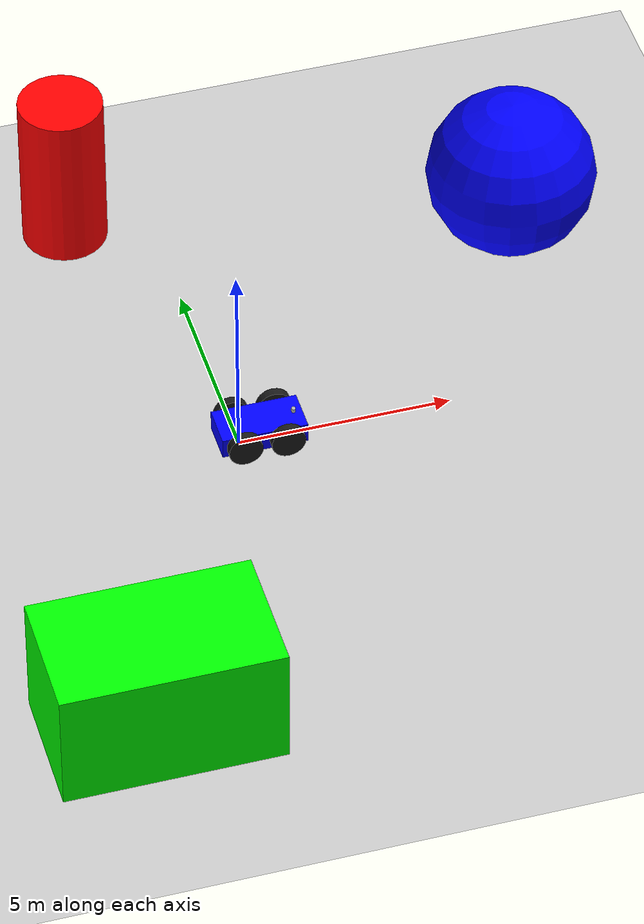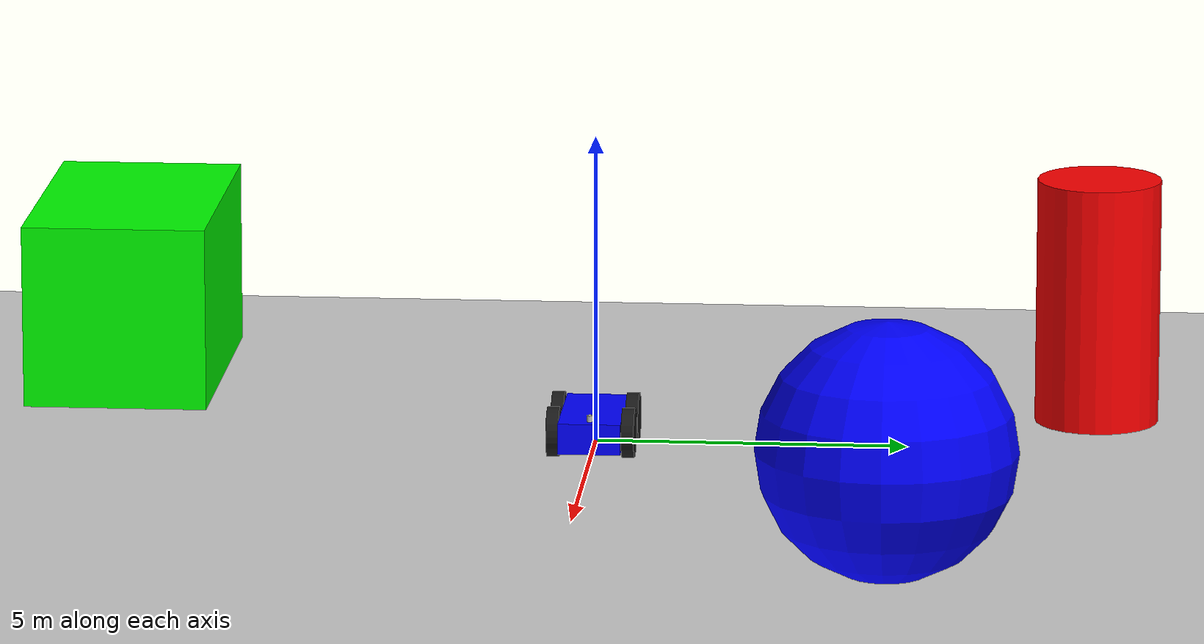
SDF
<?xml version="1.0" ?>
<sdf version="1.10">
    <world name="car_world">
        <physics name="1ms" type="ignored">
            <max_step_size>0.001</max_step_size>
            <real_time_factor>1.0</real_time_factor>
        </physics>
        <plugin
            filename="gz-sim-physics-system"
            name="gz::sim::systems::Physics">
        </plugin>
        <plugin
            filename="gz-sim-user-commands-system"
            name="gz::sim::systems::UserCommands">
        </plugin>
        <plugin
            filename="gz-sim-scene-broadcaster-system"
            name="gz::sim::systems::SceneBroadcaster">
        </plugin>
        <plugin filename="gz-sim-sensors-system"
            name="gz::sim::systems::Sensors">
            <render_engine>ogre2</render_engine>
        </plugin>

        <light type="directional" name="sun">
            <cast_shadows>true</cast_shadows>
            <pose>0 0 10 0 0 0</pose>
            <diffuse>0.8 0.8 0.8 1</diffuse>
            <specular>0.2 0.2 0.2 1</specular>
            <attenuation>
                <range>1000</range>
                <constant>0.9</constant>
                <linear>0.01</linear>
                <quadratic>0.001</quadratic>
            </attenuation>
            <direction>-0.5 0.1 -0.9</direction>
        </light>

        <model name="ground_plane">
            <static>true</static>
            <link name="link">
                <collision name="collision">
                <geometry>
                    <plane>
                    <normal>0 0 1</normal>
                    </plane>
                </geometry>
                </collision>
                <visual name="visual">
                <geometry>
                    <plane>
                    <normal>0 0 1</normal>
                    <size>1000 1000</size>
                    </plane>
                </geometry>
                <material>
                    <ambient>0.8 0.8 0.8 1</ambient>
                    <diffuse>0.8 0.8 0.8 1</diffuse>
                    <specular>0.8 0.8 0.8 1</specular>
                </material>
                </visual>
            </link>
        </model>

        <model name='vehicle_blue' canonical_link='chassis'>
            <plugin filename="gz-sim-diff-drive-system"
                name="gz::sim::systems::DiffDrive">
                <left_joint>left_front_wheel_joint</left_joint>
                <left_joint>left_rear_wheel_joint</left_joint>
                <right_joint>right_front_wheel_joint</right_joint>
                <right_joint>right_rear_wheel_joint</right_joint>
                <wheel_separation>1.2</wheel_separation>
                <wheel_radius>0.4</wheel_radius>
                <odom_publish_frequency>1</odom_publish_frequency>
                <topic>cmd_vel</topic>
            </plugin>

            <plugin filename="gz-sim-triggered-publisher-system"
                    name="gz::sim::systems::TriggeredPublisher">
                <input type="gz.msgs.Int32" topic="/keyboard/keypress">
                    <match field="data">16777235</match>
                </input>
                <output type="gz.msgs.Twist" topic="/cmd_vel">
                    linear: {x: 1}, angular: {z: 0.0}
                </output>
            </plugin>

            <plugin filename="gz-sim-triggered-publisher-system"
                    name="gz::sim::systems::TriggeredPublisher">
                <input type="gz.msgs.Int32" topic="/keyboard/keypress">
                    <match field="data">16777237</match>
                </input>
                <output type="gz.msgs.Twist" topic="/cmd_vel">
                    linear: {x: -1}, angular: {z: 0.0}
                </output>
            </plugin>

            <plugin filename="gz-sim-triggered-publisher-system"
                    name="gz::sim::systems::TriggeredPublisher">
                 <input type="gz.msgs.Int32" topic="/keyboard/keypress">
                    <match field="data">16777234</match>
                </input>
                <output type="gz.msgs.Twist" topic="/cmd_vel">
                    linear: {x: 0.0}, angular: {z: 1}
                </output>
            </plugin>

            <plugin filename="gz-sim-triggered-publisher-system"
                    name="gz::sim::systems::TriggeredPublisher">
                <input type="gz.msgs.Int32" topic="/keyboard/keypress">
                    <match field="data">16777236</match>
                </input>
                <output type="gz.msgs.Twist" topic="/cmd_vel">
                    linear: {x: 0.0}, angular: {z: -1}
                </output>
            </plugin>
            <pose relative_to='world'>0 0 0 0 0 0</pose>
            <link name='chassis'>
                <pose relative_to='__model__'>0.5 0 0.4 0 0 0</pose>
                <inertial>
                    <mass>1.14395</mass>
                    <inertia>
                        <ixx>0.095329</ixx>
                        <ixy>0</ixy>
                        <ixz>0</ixz>
                        <iyy>0.381317</iyy>
                        <iyz>0</iyz>
                        <izz>0.476646</izz>
                    </inertia>
                </inertial>
                <visual name='visual'>
                    <geometry>
                        <box>
                            <size>2.0 1.0 0.5</size>
                        </box>
                    </geometry>
                    <material>
                        <ambient>0.0 0.0 1.0 1</ambient>
                        <diffuse>0.0 0.0 1.0 1</diffuse>
                        <specular>0.0 0.0 1.0 1</specular>
                    </material>
                </visual>
                <collision name='collision'>
                    <geometry>
                        <box>
                            <size>2.0 1.0 0.5</size>
                        </box>
                    </geometry>
                </collision>
            </link>

            <link name='lidar_link'>
                <pose relative_to='chassis'>0.8 0 0.3 0 0 0</pose>
                <inertial>
                    <mass>0.1</mass>
                    <inertia>
                        <ixx>0.000166667</ixx>
                        <iyy>0.000166667</iyy>
                        <izz>0.000166667</izz>
                    </inertia>
                </inertial>
                <visual name='visual'>
                    <geometry>
                        <cylinder>
                            <radius>0.05</radius>
                            <length>0.1</length>
                        </cylinder>
                    </geometry>
                </visual>
                <sensor name='gpu_lidar' type='gpu_lidar'>
                    <topic>lidar</topic>
                    <update_rate>10</update_rate>
                    <ray>
                        <scan>
                            <horizontal>
                                <samples>640</samples>
                                <resolution>1</resolution>
                                <min_angle>-1.396263</min_angle>
                                <max_angle>1.396263</max_angle>
                            </horizontal>
                            <vertical>
                                <samples>1</samples>
                                <resolution>0.01</resolution>
                                <min_angle>0</min_angle>
                                <max_angle>0</max_angle>
                            </vertical>
                        </scan>
                        <range>
                            <min>0.08</min>
                            <max>10.0</max>
                            <resolution>0.01</resolution>
                        </range>
                    </ray>
                    <visualize>true</visualize>
                </sensor>
            </link>

            <joint name='lidar_joint' type='fixed'>
                <parent>chassis</parent>
                <child>lidar_link</child>
            </joint>

            <link name='left_rear_wheel'>
                <pose relative_to="chassis">-0.5 0.6 0 -1.5707 0 0</pose>
                <inertial>
                    <mass>1</mass>
                    <inertia>
                        <ixx>0.043333</ixx>
                        <ixy>0</ixy>
                        <ixz>0</ixz>
                        <iyy>0.043333</iyy>
                        <iyz>0</iyz>
                        <izz>0.08</izz>
                    </inertia>
                </inertial>
                <visual name='visual'>
                    <geometry>
                        <cylinder>
                            <radius>0.4</radius>
                            <length>0.2</length>
                        </cylinder>
                    </geometry>
                    <material>
                        <ambient>0.1 0.1 0.1 1</ambient>
                        <diffuse>0.1 0.1 0.1 1</diffuse>
                        <specular>0.1 0.1 0.1 1</specular>
                    </material>
                </visual>
                <collision name='collision'>
                    <geometry>
                        <cylinder>
                            <radius>0.4</radius>
                            <length>0.2</length>
                        </cylinder>
                    </geometry>
                </collision>
            </link>
            <joint name='left_rear_wheel_joint' type='revolute'>
                <pose relative_to='left_rear_wheel'/>
                <parent>chassis</parent>
                <child>left_rear_wheel</child>
                <axis>
                    <xyz expressed_in='__model__'>0 1 0</xyz>
                    <limit>
                        <lower>-1.79769e+308</lower>
                        <upper>1.79769e+308</upper>
                    </limit>
                </axis>
            </joint>

            <link name='right_rear_wheel'>
                <pose relative_to="chassis">-0.5 -0.6 0 -1.5707 0 0</pose>
                <inertial>
                    <mass>1</mass>
                    <inertia>
                        <ixx>0.043333</ixx>
                        <ixy>0</ixy>
                        <ixz>0</ixz>
                        <iyy>0.043333</iyy>
                        <iyz>0</iyz>
                        <izz>0.08</izz>
                    </inertia>
                </inertial>
                <visual name='visual'>
                    <geometry>
                        <cylinder>
                            <radius>0.4</radius>
                            <length>0.2</length>
                        </cylinder>
                    </geometry>
                    <material>
                        <ambient>0.1 0.1 0.1 1</ambient>
                        <diffuse>0.1 0.1 0.1 1</diffuse>
                        <specular>0.1 0.1 0.1 1</specular>
                    </material>
                </visual>
                <collision name='collision'>
                    <geometry>
                        <cylinder>
                            <radius>0.4</radius>
                            <length>0.2</length>
                        </cylinder>
                    </geometry>
                </collision>
            </link>
            <joint name='right_rear_wheel_joint' type='revolute'>
                <pose relative_to='right_rear_wheel'/>
                <parent>chassis</parent>
                <child>right_rear_wheel</child>
                <axis>
                    <xyz expressed_in='__model__'>0 1 0</xyz>
                    <limit>
                        <lower>-1.79769e+308</lower>
                        <upper>1.79769e+308</upper>
                    </limit>
                </axis>
            </joint>

            <link name='left_front_wheel'>
                <pose relative_to="chassis">0.5 0.6 0 -1.5707 0 0</pose>
                <inertial>
                    <mass>1</mass>
                    <inertia>
                        <ixx>0.043333</ixx>
                        <ixy>0</ixy>
                        <ixz>0</ixz>
                        <iyy>0.043333</iyy>
                        <iyz>0</iyz>
                        <izz>0.08</izz>
                    </inertia>
                </inertial>
                <visual name='visual'>
                    <geometry>
                        <cylinder>
                            <radius>0.4</radius>
                            <length>0.2</length>
                        </cylinder>
                    </geometry>
                    <material>
                        <ambient>0.1 0.1 0.1 1</ambient>
                        <diffuse>0.1 0.1 0.1 1</diffuse>
                        <specular>0.1 0.1 0.1 1</specular>
                    </material>
                </visual>
                <collision name='collision'>
                    <geometry>
                        <cylinder>
                            <radius>0.4</radius>
                            <length>0.2</length>
                        </cylinder>
                    </geometry>
                </collision>
            </link>
            <joint name='left_front_wheel_joint' type='revolute'>
                <pose relative_to='left_front_wheel'/>
                <parent>chassis</parent>
                <child>left_front_wheel</child>
                <axis>
                    <xyz expressed_in='__model__'>0 1 0</xyz>
                    <limit>
                        <lower>-1.79769e+308</lower>
                        <upper>1.79769e+308</upper>
                    </limit>
                </axis>
            </joint>

            <link name='right_front_wheel'>
                <pose relative_to="chassis">0.5 -0.6 0 -1.5707 0 0</pose>
                <inertial>
                    <mass>1</mass>
                    <inertia>
                        <ixx>0.043333</ixx>
                        <ixy>0</ixy>
                        <ixz>0</ixz>
                        <iyy>0.043333</iyy>
                        <iyz>0</iyz>
                        <izz>0.08</izz>
                    </inertia>
                </inertial>
                <visual name='visual'>
                    <geometry>
                        <cylinder>
                            <radius>0.4</radius>
                            <length>0.2</length>
                        </cylinder>
                    </geometry>
                    <material>
                        <ambient>0.1 0.1 0.1 1</ambient>
                        <diffuse>0.1 0.1 0.1 1</diffuse>
                        <specular>0.1 0.1 0.1 1</specular>
                    </material>
                </visual>
                <collision name='collision'>
                    <geometry>
                        <cylinder>
                            <radius>0.4</radius>
                            <length>0.2</length>
                        </cylinder>
                    </geometry>
                </collision>
            </link>
            <joint name='right_front_wheel_joint' type='revolute'>
                <pose relative_to='right_front_wheel'/>
                <parent>chassis</parent>
                <child>right_front_wheel</child>
                <axis>
                    <xyz expressed_in='__model__'>0 1 0</xyz>
                    <limit>
                        <lower>-1.79769e+308</lower>
                        <upper>1.79769e+308</upper>
                    </limit>
                </axis>
            </joint>
        </model>

        <model name='red_pillar'>
            <plugin filename="gz-sim-touchplugin-system"
                name="gz::sim::systems::TouchPlugin">
                <target>vehicle_blue</target>
                <namespace>pillar</namespace>
                <time>0.001</time>
                <enabled>true</enabled>
            </plugin>
            <static>true</static>
            <pose>-2 8 2 0 0 0</pose>
            <link name='link'>
                <visual name='visual'>
                <geometry>
                    <cylinder>
                    <radius>1</radius>
                    <length>4.0</length>
                    </cylinder>
                </geometry>
                <material>
                    <ambient>1.0 0.0 0.0 1</ambient>
                    <diffuse>1.0 0.0 0.0 1</diffuse>
                    <specular>1.0 0.0 0.0 1</specular>
                </material>
                </visual>
                <collision name='collision'>
                <geometry>
                    <cylinder>
                    <radius>1</radius>
                    <length>4.0</length>
                    </cylinder>
                </geometry>
                </collision>
            </link>
        </model>

        <model name='green_block'>
            <plugin filename="gz-sim-touchplugin-system"
                name="gz::sim::systems::TouchPlugin">
                <target>vehicle_blue</target>
                <namespace>block</namespace>
                <time>0.001</time>
                <enabled>true</enabled>
            </plugin>
            <static>true</static>
            <pose>-4 -8 1.5 0 0 0</pose>
            <link name='link'>
                <visual name='visual'>
                <geometry>
                    <box>
                    <size>5.0 3.0 3.0</size>
                    </box>
                </geometry>
                <material>
                    <ambient>0.0 1.0 0.0 1</ambient>
                    <diffuse>0.0 1.0 0.0 1</diffuse>
                    <specular>0.0 1.0 0.0 1</specular>
                </material>
                </visual>
                <collision name='collision'>
                <geometry>
                    <box>
                    <size>5.0 3.0 3.0</size>
                    </box>
                </geometry>
                </collision>
            </link>
        </model>

        <model name='blue_ball'>
            <plugin filename="gz-sim-touchplugin-system"
                name="gz::sim::systems::TouchPlugin">
                <target>vehicle_blue</target>
                <namespace>ball</namespace>
                <time>0.001</time>
                <enabled>true</enabled>
            </plugin>
            <static>true</static>
            <pose>8 5 2 0 0 0</pose>
            <link name='link'>
                <visual name='visual'>
                <geometry>
                    <sphere>
                    <radius>2</radius>
                    </sphere>
                </geometry>
                <material>
                    <ambient>0.0 0.0 1.0 1</ambient>
                    <diffuse>0.0 0.0 1.0 1</diffuse>
                </material>
                </visual>
                <collision name='collision'>
                <geometry>
                    <sphere>
                    <radius>2</radius>
                    </sphere>
                </geometry>
                </collision>
            </link>
        </model>

    </world>
</sdf>
